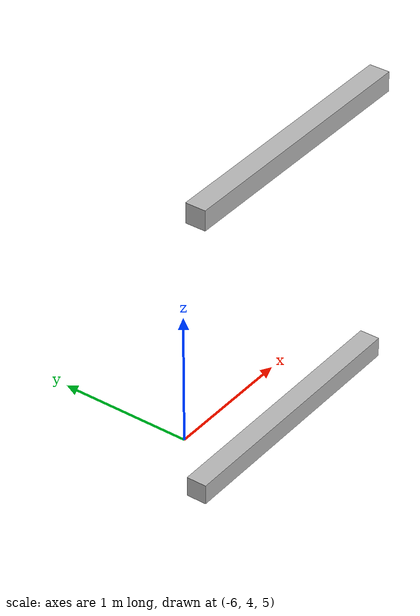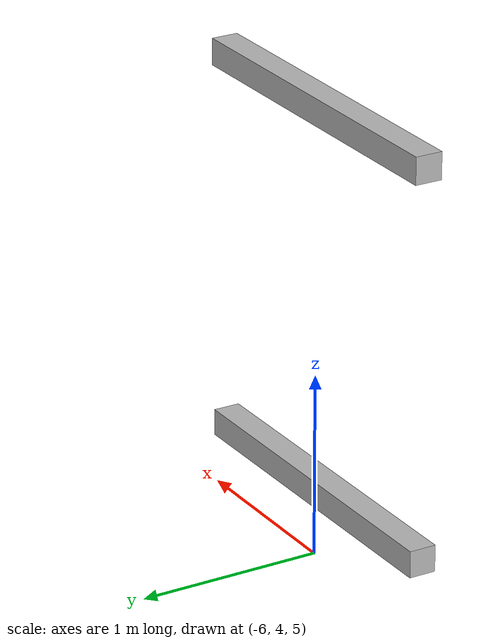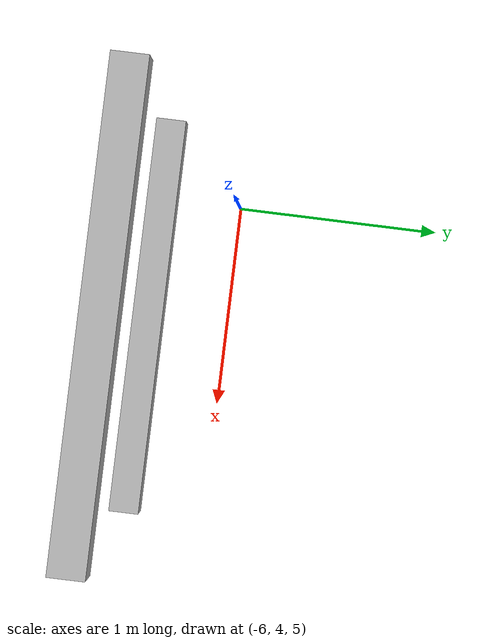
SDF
<sdf version="1.7">
 <world name="default">
  <model name="orthogonal_747_2.000.15_TS">
   <static>1</static>
   <link name="x_link_3_4_0">
    <inertial>
     <mass>1</mass>
     <inertia>
      <ixx>0.166667</ixx>
      <ixy>0</ixy>
      <ixz>0</ixz>
      <iyy>0.166667</iyy>
      <iyz>0</iyz>
      <izz>0.166667</izz>
     </inertia>
    </inertial>
    <pose>1.075 8.6 7.525 0 -0 0</pose>
    <visual name="visual_0">
     <laser_retro>3298</laser_retro>
     <geometry><box><size>2 1e-06 0.15</size></box></geometry>
     <material>
      <script><name>Gazebo/Grey</name><uri>file://media/materials/scripts/gazebo.material</uri></script>
      <shader type="pixel"><normal_map>__default__</normal_map></shader>
      <ambient>0.678 0.498 0.659 1</ambient>
      <diffuse>0.7 0.7 0.7 1</diffuse>
      <specular>0.01 0.01 0.01 1</specular>
      <emissive>0 0 0 1</emissive>
     </material>
     <pose>0 -0.075 0 0 -0 0</pose>
     <transparency>1</transparency>
    </visual>
    <visual name="visual_1">
     <laser_retro>3299</laser_retro>
     <geometry><box><size>2 1e-06 0.15</size></box></geometry>
     <material>
      <script><name>Gazebo/Grey</name><uri>file://media/materials/scripts/gazebo.material</uri></script>
      <shader type="pixel"><normal_map>__default__</normal_map></shader>
      <ambient>0.447 0.624 0.812 1</ambient>
      <diffuse>0.7 0.7 0.7 1</diffuse>
      <specular>0.01 0.01 0.01 1</specular>
      <emissive>0 0 0 1</emissive>
     </material>
     <pose>0 0.075 0 0 -0 0</pose>
     <transparency>1</transparency>
    </visual>
    <visual name="visual_2">
     <laser_retro>3300</laser_retro>
     <geometry><box><size>2 0.15 1e-06</size></box></geometry>
     <material>
      <script><name>Gazebo/Grey</name><uri>file://media/materials/scripts/gazebo.material</uri></script>
      <shader type="pixel"><normal_map>__default__</normal_map></shader>
      <ambient>0.988 0.686 0.243 1</ambient>
      <diffuse>0.7 0.7 0.7 1</diffuse>
      <specular>0.01 0.01 0.01 1</specular>
      <emissive>0 0 0 1</emissive>
     </material>
     <pose>0 0 -0.075 0 -0 0</pose>
     <transparency>1</transparency>
    </visual>
    <visual name="visual_3">
     <laser_retro>3301</laser_retro>
     <geometry><box><size>1e-06 0.15 0.15</size></box></geometry>
     <material>
      <script><name>Gazebo/Grey</name><uri>file://media/materials/scripts/gazebo.material</uri></script>
      <shader type="pixel"><normal_map>__default__</normal_map></shader>
      <ambient>0.988 0.914 0.31 1</ambient>
      <diffuse>0.7 0.7 0.7 1</diffuse>
      <specular>0.01 0.01 0.01 1</specular>
      <emissive>0 0 0 1</emissive>
     </material>
     <pose>1 0 0 0 -0 0</pose>
     <transparency>1</transparency>
    </visual>
    <visual name="visual_4">
     <laser_retro>3302</laser_retro>
     <geometry><box><size>2 0.15 1e-06</size></box></geometry>
     <material>
      <script><name>Gazebo/Grey</name><uri>file://media/materials/scripts/gazebo.material</uri></script>
      <shader type="pixel"><normal_map>__default__</normal_map></shader>
      <ambient>0.937 0.161 0.161 1</ambient>
      <diffuse>0.7 0.7 0.7 1</diffuse>
      <specular>0.01 0.01 0.01 1</specular>
      <emissive>0 0 0 1</emissive>
     </material>
     <pose>0 0 0.075 0 -0 0</pose>
     <transparency>1</transparency>
    </visual>
    <visual name="visual_5">
     <laser_retro>3303</laser_retro>
     <geometry><box><size>1e-06 0.15 0.15</size></box></geometry>
     <material>
      <script><name>Gazebo/Grey</name><uri>file://media/materials/scripts/gazebo.material</uri></script>
      <shader type="pixel"><normal_map>__default__</normal_map></shader>
      <ambient>0.541 0.886 0.204 1</ambient>
      <diffuse>0.7 0.7 0.7 1</diffuse>
      <specular>0.01 0.01 0.01 1</specular>
      <emissive>0 0 0 1</emissive>
     </material>
     <pose>-1 0 0 0 -0 0</pose>
     <transparency>1</transparency>
    </visual>
    <visual name="visual_texture">
     <geometry><box><size>1.9998 0.149985 0.149985</size></box></geometry>
     <material>
      <script>
       <uri>model://BASE_MODELS/simple_block_v2_textured/materials/scripts</uri>
       <uri>model://BASE_MODELS/simple_block_v2_textured/materials/textures</uri>
       <name>metal</name>
      </script>
     </material>
     <laser_retro>3304</laser_retro>
    </visual>
    <collision name="collision">
     <geometry><box><size>2 0.15 0.15</size></box></geometry>
     <surface>
      <friction>
       <ode><mu>1</mu><mu2>1</mu2><fdir1>0 0 0</fdir1><slip1>0</slip1><slip2>0</slip2></ode>
       <torsional>
        <coefficient>1</coefficient>
        <patch_radius>0</patch_radius>
        <surface_radius>0</surface_radius>
        <use_patch_radius>1</use_patch_radius>
        <ode><slip>0</slip></ode>
       </torsional>
      </friction>
      <bounce><restitution_coefficient>0</restitution_coefficient><threshold>1e+06</threshold></bounce>
      <contact>
       <collide_without_contact>0</collide_without_contact>
       <collide_without_contact_bitmask>1</collide_without_contact_bitmask>
       <collide_bitmask>1</collide_bitmask>
       <ode>
        <soft_cfm>0</soft_cfm>
        <soft_erp>0.2</soft_erp>
        <kp>1e+13</kp>
        <kd>1</kd>
        <max_vel>0.01</max_vel>
        <min_depth>0</min_depth>
       </ode>
       <bullet>
        <split_impulse>1</split_impulse>
        <split_impulse_penetration_threshold>-0.01</split_impulse_penetration_threshold>
        <soft_cfm>0</soft_cfm>
        <soft_erp>0.2</soft_erp>
        <kp>1e+13</kp>
        <kd>1</kd>
       </bullet>
      </contact>
     </surface>
    </collision>
   </link>
   <link name="x_link_4_4_0">
    <inertial>
     <mass>1</mass>
     <inertia>
      <ixx>0.166667</ixx>
      <ixy>0</ixy>
      <ixz>0</ixz>
      <iyy>0.166667</iyy>
      <iyz>0</iyz>
      <izz>0.166667</izz>
     </inertia>
    </inertial>
    <pose>1.075 8.6 9.675 0 -0 0</pose>
    <visual name="visual_0">
     <laser_retro>4201</laser_retro>
     <geometry><box><size>2 1e-06 0.15</size></box></geometry>
     <material>
      <script><name>Gazebo/Grey</name><uri>file://media/materials/scripts/gazebo.material</uri></script>
      <shader type="pixel"><normal_map>__default__</normal_map></shader>
      <ambient>0.678 0.498 0.659 1</ambient>
      <diffuse>0.7 0.7 0.7 1</diffuse>
      <specular>0.01 0.01 0.01 1</specular>
      <emissive>0 0 0 1</emissive>
     </material>
     <pose>0 -0.075 0 0 -0 0</pose>
     <transparency>1</transparency>
    </visual>
    <visual name="visual_1">
     <laser_retro>4202</laser_retro>
     <geometry><box><size>2 1e-06 0.15</size></box></geometry>
     <material>
      <script><name>Gazebo/Grey</name><uri>file://media/materials/scripts/gazebo.material</uri></script>
      <shader type="pixel"><normal_map>__default__</normal_map></shader>
      <ambient>0.447 0.624 0.812 1</ambient>
      <diffuse>0.7 0.7 0.7 1</diffuse>
      <specular>0.01 0.01 0.01 1</specular>
      <emissive>0 0 0 1</emissive>
     </material>
     <pose>0 0.075 0 0 -0 0</pose>
     <transparency>1</transparency>
    </visual>
    <visual name="visual_2">
     <laser_retro>4203</laser_retro>
     <geometry><box><size>2 0.15 1e-06</size></box></geometry>
     <material>
      <script><name>Gazebo/Grey</name><uri>file://media/materials/scripts/gazebo.material</uri></script>
      <shader type="pixel"><normal_map>__default__</normal_map></shader>
      <ambient>0.988 0.686 0.243 1</ambient>
      <diffuse>0.7 0.7 0.7 1</diffuse>
      <specular>0.01 0.01 0.01 1</specular>
      <emissive>0 0 0 1</emissive>
     </material>
     <pose>0 0 -0.075 0 -0 0</pose>
     <transparency>1</transparency>
    </visual>
    <visual name="visual_3">
     <laser_retro>4204</laser_retro>
     <geometry><box><size>1e-06 0.15 0.15</size></box></geometry>
     <material>
      <script><name>Gazebo/Grey</name><uri>file://media/materials/scripts/gazebo.material</uri></script>
      <shader type="pixel"><normal_map>__default__</normal_map></shader>
      <ambient>0.988 0.914 0.31 1</ambient>
      <diffuse>0.7 0.7 0.7 1</diffuse>
      <specular>0.01 0.01 0.01 1</specular>
      <emissive>0 0 0 1</emissive>
     </material>
     <pose>1 0 0 0 -0 0</pose>
     <transparency>1</transparency>
    </visual>
    <visual name="visual_4">
     <laser_retro>4205</laser_retro>
     <geometry><box><size>2 0.15 1e-06</size></box></geometry>
     <material>
      <script><name>Gazebo/Grey</name><uri>file://media/materials/scripts/gazebo.material</uri></script>
      <shader type="pixel"><normal_map>__default__</normal_map></shader>
      <ambient>0.937 0.161 0.161 1</ambient>
      <diffuse>0.7 0.7 0.7 1</diffuse>
      <specular>0.01 0.01 0.01 1</specular>
      <emissive>0 0 0 1</emissive>
     </material>
     <pose>0 0 0.075 0 -0 0</pose>
     <transparency>1</transparency>
    </visual>
    <visual name="visual_5">
     <laser_retro>4206</laser_retro>
     <geometry><box><size>1e-06 0.15 0.15</size></box></geometry>
     <material>
      <script><name>Gazebo/Grey</name><uri>file://media/materials/scripts/gazebo.material</uri></script>
      <shader type="pixel"><normal_map>__default__</normal_map></shader>
      <ambient>0.541 0.886 0.204 1</ambient>
      <diffuse>0.7 0.7 0.7 1</diffuse>
      <specular>0.01 0.01 0.01 1</specular>
      <emissive>0 0 0 1</emissive>
     </material>
     <pose>-1 0 0 0 -0 0</pose>
     <transparency>1</transparency>
    </visual>
    <visual name="visual_texture">
     <geometry><box><size>1.9998 0.149985 0.149985</size></box></geometry>
     <material>
      <script>
       <uri>model://BASE_MODELS/simple_block_v2_textured/materials/scripts</uri>
       <uri>model://BASE_MODELS/simple_block_v2_textured/materials/textures</uri>
       <name>metal</name>
      </script>
     </material>
     <laser_retro>4207</laser_retro>
    </visual>
    <collision name="collision">
     <geometry><box><size>2 0.15 0.15</size></box></geometry>
     <surface>
      <friction>
       <ode><mu>1</mu><mu2>1</mu2><fdir1>0 0 0</fdir1><slip1>0</slip1><slip2>0</slip2></ode>
       <torsional>
        <coefficient>1</coefficient>
        <patch_radius>0</patch_radius>
        <surface_radius>0</surface_radius>
        <use_patch_radius>1</use_patch_radius>
        <ode><slip>0</slip></ode>
       </torsional>
      </friction>
      <bounce><restitution_coefficient>0</restitution_coefficient><threshold>1e+06</threshold></bounce>
      <contact>
       <collide_without_contact>0</collide_without_contact>
       <collide_without_contact_bitmask>1</collide_without_contact_bitmask>
       <collide_bitmask>1</collide_bitmask>
       <ode>
        <soft_cfm>0</soft_cfm>
        <soft_erp>0.2</soft_erp>
        <kp>1e+13</kp>
        <kd>1</kd>
        <max_vel>0.01</max_vel>
        <min_depth>0</min_depth>
       </ode>
       <bullet>
        <split_impulse>1</split_impulse>
        <split_impulse_penetration_threshold>-0.01</split_impulse_penetration_threshold>
        <soft_cfm>0</soft_cfm>
        <soft_erp>0.2</soft_erp>
        <kp>1e+13</kp>
        <kd>1</kd>
       </bullet>
      </contact>
     </surface>
    </collision>
   </link>
   <pose>-6.47624 -5 -2.5 0 -0 0</pose>
  </model>
 </world>
</sdf>
